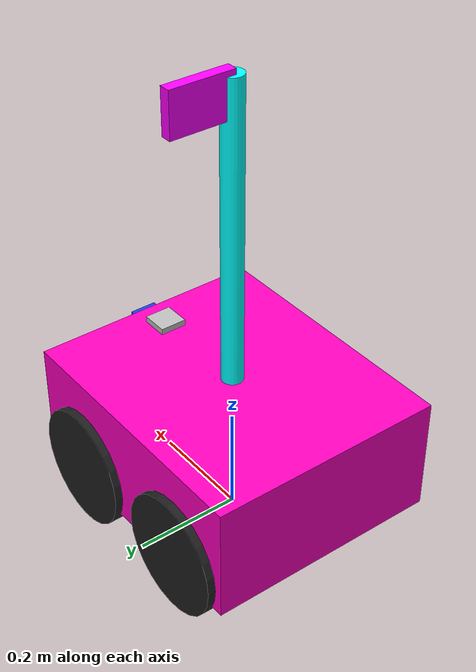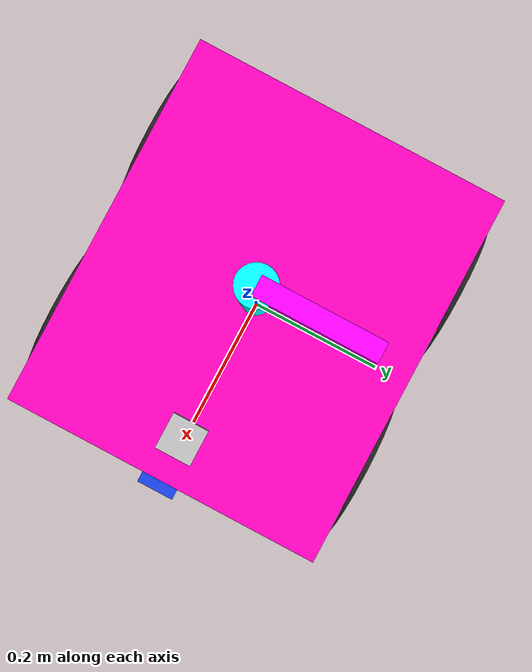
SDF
<?xml version="1.0" ?>
<sdf version="1.8">
  <model name="pioneer">
    <pose>0 0 0 0 0 0</pose>

    <link name="base_link">
      <pose>0 0 0 0 0 0</pose>
      <inertial>
        <pose>0 0 0.177 0 0 0</pose>
        <mass>20.0</mass>
        <inertia>
          <ixx>0.3338</ixx>
          <ixy>0.0</ixy>
          <ixz>0.0</ixz>
          <iyy>0.4783</iyy>
          <iyz>0.0</iyz>
          <izz>0.3338</izz>
        </inertia>
      </inertial>

      <collision name="chassis_collision">
        <pose>0 0 0.177 0 0 0</pose>
        <geometry>
          <box>
            <size>0.52 0.44 0.22</size>
          </box>
        </geometry>
      </collision>
      <visual name="chassis_visual">
        <pose>0 0 0.177 0 0 0</pose>
        <geometry>
          <box>
            <size>0.52 0.44 0.22</size>
          </box>
        </geometry>
        <material>
          <ambient>1 0 0.75 1</ambient>
          <diffuse>1 0 0.75 1</diffuse>
        </material>
      </visual>

      <collision name="top_plate_collision">
        <pose>0.043 0 0.254 0 0 0</pose>
        <geometry>
          <box>
            <size>0.20 0.20 0.05</size>
          </box>
        </geometry>
      </collision>
      <visual name="top_plate_visual">
        <pose>0.043 0 0.254 0 0 0</pose>
        <geometry>
          <box>
            <size>0.22 0.22 0.04</size>
          </box>
        </geometry>
        <material>
          <ambient>1 0.9 0.1 1</ambient>
          <diffuse>1 0.9 0.1 1</diffuse>
        </material>
      </visual>

      <visual name="mast_visual">
        <pose>0 0 0.55 0 0 0</pose>
        <geometry>
          <cylinder>
            <radius>0.02</radius>
            <length>0.6</length>
          </cylinder>
        </geometry>
        <material>
          <ambient>0 1 1 1</ambient>
          <diffuse>0 1 1 1</diffuse>
        </material>
      </visual>
      <visual name="flag_visual">
        <pose>0 0.06 0.82 0 0 0</pose>
        <geometry>
          <box>
            <size>0.02 0.12 0.08</size>
          </box>
        </geometry>
        <material>
          <ambient>1 0 1 1</ambient>
          <diffuse>1 0 1 1</diffuse>
        </material>
      </visual>

      <sensor name="imu_sensor" type="imu">
        <always_on>true</always_on>
        <update_rate>20</update_rate>
        <topic>imu</topic>
        <gz_frame_id>base_link</gz_frame_id>
        <imu>
          <angular_velocity>
            <x><noise type="gaussian"><mean>0</mean><stddev>0.001</stddev></noise></x>
            <y><noise type="gaussian"><mean>0</mean><stddev>0.001</stddev></noise></y>
            <z><noise type="gaussian"><mean>0</mean><stddev>0.001</stddev></noise></z>
          </angular_velocity>
          <linear_acceleration>
            <x><noise type="gaussian"><mean>0</mean><stddev>0.05</stddev></noise></x>
            <y><noise type="gaussian"><mean>0</mean><stddev>0.05</stddev></noise></y>
            <z><noise type="gaussian"><mean>0</mean><stddev>0.05</stddev></noise></z>
          </linear_acceleration>
        </imu>
      </sensor>
    </link>

    <link name="laser_frame">
      <pose>0.2 0 0.281 0 0 0</pose>
      <inertial>
        <mass>0.01</mass>
        <inertia>
          <ixx>1e-6</ixx>
          <ixy>0</ixy>
          <ixz>0</ixz>
          <iyy>1e-6</iyy>
          <iyz>0</iyz>
          <izz>1e-6</izz>
        </inertia>
      </inertial>
      <collision name="collision">
        <geometry>
          <box>
            <size>0.04 0.04 0.03</size>
          </box>
        </geometry>
      </collision>
      <visual name="visual">
        <geometry>
          <box>
            <size>0.05 0.05 0.035</size>
          </box>
        </geometry>
        <material>
          <ambient>0.75 0.75 0.75 1</ambient>
          <diffuse>0.75 0.75 0.75 1</diffuse>
        </material>
      </visual>
      <sensor name="front_lidar" type="gpu_lidar">
        <always_on>true</always_on>
        <update_rate>10</update_rate>
        <topic>scan</topic>
        <gz_frame_id>laser_frame</gz_frame_id>
        <lidar>
          <scan>
            <horizontal>
              <samples>810</samples>
              <resolution>1</resolution>
              <min_angle>-2.35619</min_angle>
              <max_angle>2.35619</max_angle>
            </horizontal>
          </scan>
          <range>
            <min>0.05</min>
            <max>20.0</max>
            <resolution>0.01</resolution>
          </range>
          <noise>
            <type>gaussian</type>
            <mean>0.0</mean>
            <stddev>0.02</stddev>
          </noise>
        </lidar>
      </sensor>
    </link>

    <joint name="laser_joint" type="fixed">
      <parent>base_link</parent>
      <child>laser_frame</child>
    </joint>

    <link name="cam_frame">
      <pose>0.24 0 0.261 0 0 0</pose>
      <inertial>
        <mass>0.05</mass>
        <inertia>
          <ixx>1e-4</ixx>
          <ixy>0</ixy>
          <ixz>0</ixz>
          <iyy>1e-4</iyy>
          <iyz>0</iyz>
          <izz>1e-4</izz>
        </inertia>
      </inertial>
      <collision name="collision">
        <geometry>
          <box>
            <size>0.06 0.05 0.04</size>
          </box>
        </geometry>
      </collision>
      <visual name="visual">
        <geometry>
          <box>
            <size>0.07 0.05 0.04</size>
          </box>
        </geometry>
        <material>
          <ambient>0.1 0.25 0.9 1</ambient>
          <diffuse>0.1 0.25 0.9 1</diffuse>
        </material>
      </visual>
    </link>

    <joint name="cam_joint" type="fixed">
      <parent>base_link</parent>
      <child>cam_frame</child>
    </joint>

    <link name="cam_optical_link">
      <pose>0.24 0 0.261 -1.5708 0 -1.5708</pose>
      <inertial>
        <mass>0.001</mass>
        <inertia>
          <ixx>1e-6</ixx>
          <ixy>0</ixy>
          <ixz>0</ixz>
          <iyy>1e-6</iyy>
          <iyz>0</iyz>
          <izz>1e-6</izz>
        </inertia>
      </inertial>
      <sensor name="front_camera" type="camera">
        <always_on>true</always_on>
        <update_rate>2</update_rate>
        <topic>camera/image</topic>
        <gz_frame_id>cam_optical_link</gz_frame_id>
        <camera>
          <camera_info_topic>camera/camera_info</camera_info_topic>
          <horizontal_fov>1.204277</horizontal_fov>
          <image>
            <width>160</width>
            <height>120</height>
            <format>R8G8B8</format>
          </image>
          <clip>
            <near>0.1</near>
            <far>12.0</far>
          </clip>
          <noise>
            <type>gaussian</type>
            <mean>0.0</mean>
            <stddev>0.0075</stddev>
          </noise>
        </camera>
      </sensor>
    </link>

    <joint name="cam_optical_joint" type="fixed">
      <parent>cam_frame</parent>
      <child>cam_optical_link</child>
    </joint>

    <link name="p3at_front_left_wheel">
      <pose>0.135 0.197 0.111 0 0 0</pose>
      <inertial>
        <mass>0.5</mass>
        <inertia>
          <ixx>0.012411765597</ixx>
          <ixy>0</ixy>
          <ixz>0</ixz>
          <iyy>0.015218160428</iyy>
          <iyz>0</iyz>
          <izz>0.011763977943</izz>
        </inertia>
      </inertial>
      <collision name="collision">
        <pose>0 0 0 -1.57079635 0 0</pose>
        <geometry>
          <cylinder>
            <radius>0.111</radius>
            <length>0.075</length>
          </cylinder>
        </geometry>
      </collision>
      <visual name="visual">
        <pose>0 0 0 -1.57079635 0 0</pose>
        <geometry>
          <cylinder>
            <radius>0.111</radius>
            <length>0.075</length>
          </cylinder>
        </geometry>
        <material>
          <ambient>0.117 0.117 0.117 1</ambient>
          <diffuse>0.117 0.117 0.117 1</diffuse>
        </material>
      </visual>
    </link>
    <joint name="p3at_front_left_wheel_joint" type="revolute">
      <parent>base_link</parent>
      <child>p3at_front_left_wheel</child>
      <axis>
        <xyz>0 1 0</xyz>
        <limit>
          <lower>-1e16</lower>
          <upper>1e16</upper>
          <effort>100</effort>
          <velocity>100</velocity>
        </limit>
        <dynamics>
          <damping>0.7</damping>
        </dynamics>
      </axis>
    </joint>

    <link name="p3at_front_right_wheel">
      <pose>0.135 -0.197 0.111 0 0 0</pose>
      <inertial>
        <mass>0.5</mass>
        <inertia>
          <ixx>0.012411765597</ixx>
          <ixy>0</ixy>
          <ixz>0</ixz>
          <iyy>0.015218160428</iyy>
          <iyz>0</iyz>
          <izz>0.011763977943</izz>
        </inertia>
      </inertial>
      <collision name="collision">
        <pose>0 0 0 -1.57079635 0 0</pose>
        <geometry>
          <cylinder>
            <radius>0.111</radius>
            <length>0.075</length>
          </cylinder>
        </geometry>
      </collision>
      <visual name="visual">
        <pose>0 0 0 -1.57079635 0 0</pose>
        <geometry>
          <cylinder>
            <radius>0.111</radius>
            <length>0.075</length>
          </cylinder>
        </geometry>
        <material>
          <ambient>0.117 0.117 0.117 1</ambient>
          <diffuse>0.117 0.117 0.117 1</diffuse>
        </material>
      </visual>
    </link>
    <joint name="p3at_front_right_wheel_joint" type="revolute">
      <parent>base_link</parent>
      <child>p3at_front_right_wheel</child>
      <axis>
        <xyz>0 1 0</xyz>
        <limit>
          <lower>-1e16</lower>
          <upper>1e16</upper>
          <effort>100</effort>
          <velocity>100</velocity>
        </limit>
        <dynamics>
          <damping>0.7</damping>
        </dynamics>
      </axis>
    </joint>

    <link name="p3at_back_left_wheel">
      <pose>-0.135 0.197 0.111 0 0 0</pose>
      <inertial>
        <mass>0.5</mass>
        <inertia>
          <ixx>0.012411765597</ixx>
          <ixy>0</ixy>
          <ixz>0</ixz>
          <iyy>0.015218160428</iyy>
          <iyz>0</iyz>
          <izz>0.011763977943</izz>
        </inertia>
      </inertial>
      <collision name="collision">
        <pose>0 0 0 -1.57079635 0 0</pose>
        <geometry>
          <cylinder>
            <radius>0.111</radius>
            <length>0.075</length>
          </cylinder>
        </geometry>
      </collision>
      <visual name="visual">
        <pose>0 0 0 -1.57079635 0 0</pose>
        <geometry>
          <cylinder>
            <radius>0.111</radius>
            <length>0.075</length>
          </cylinder>
        </geometry>
        <material>
          <ambient>0.117 0.117 0.117 1</ambient>
          <diffuse>0.117 0.117 0.117 1</diffuse>
        </material>
      </visual>
    </link>
    <joint name="p3at_back_left_wheel_joint" type="revolute">
      <parent>base_link</parent>
      <child>p3at_back_left_wheel</child>
      <axis>
        <xyz>0 1 0</xyz>
        <limit>
          <lower>-1e16</lower>
          <upper>1e16</upper>
          <effort>100</effort>
          <velocity>100</velocity>
        </limit>
        <dynamics>
          <damping>0.7</damping>
        </dynamics>
      </axis>
    </joint>

    <link name="p3at_back_right_wheel">
      <pose>-0.135 -0.197 0.111 0 0 0</pose>
      <inertial>
        <mass>0.5</mass>
        <inertia>
          <ixx>0.012411765597</ixx>
          <ixy>0</ixy>
          <ixz>0</ixz>
          <iyy>0.015218160428</iyy>
          <iyz>0</iyz>
          <izz>0.011763977943</izz>
        </inertia>
      </inertial>
      <collision name="collision">
        <pose>0 0 0 -1.57079635 0 0</pose>
        <geometry>
          <cylinder>
            <radius>0.111</radius>
            <length>0.075</length>
          </cylinder>
        </geometry>
      </collision>
      <visual name="visual">
        <pose>0 0 0 -1.57079635 0 0</pose>
        <geometry>
          <cylinder>
            <radius>0.111</radius>
            <length>0.075</length>
          </cylinder>
        </geometry>
        <material>
          <ambient>0.117 0.117 0.117 1</ambient>
          <diffuse>0.117 0.117 0.117 1</diffuse>
        </material>
      </visual>
    </link>
    <joint name="p3at_back_right_wheel_joint" type="revolute">
      <parent>base_link</parent>
      <child>p3at_back_right_wheel</child>
      <axis>
        <xyz>0 1 0</xyz>
        <limit>
          <lower>-1e16</lower>
          <upper>1e16</upper>
          <effort>100</effort>
          <velocity>100</velocity>
        </limit>
        <dynamics>
          <damping>0.7</damping>
        </dynamics>
      </axis>
    </joint>

    <plugin filename="gz-sim-joint-state-publisher-system" name="gz::sim::systems::JointStatePublisher">
      <topic>joint_states</topic>
    </plugin>
    <plugin filename="gz-sim-diff-drive-system" name="gz::sim::systems::DiffDrive">
      <left_joint>p3at_front_left_wheel_joint</left_joint>
      <left_joint>p3at_back_left_wheel_joint</left_joint>
      <right_joint>p3at_front_right_wheel_joint</right_joint>
      <right_joint>p3at_back_right_wheel_joint</right_joint>
      <wheel_separation>0.394</wheel_separation>
      <wheel_radius>0.111</wheel_radius>
      <odom_publish_frequency>20.0</odom_publish_frequency>
      <topic>cmd_vel</topic>
      <odom_topic>odom</odom_topic>
      <frame_id>odom</frame_id>
      <child_frame_id>base_link</child_frame_id>
      <publish_odom>true</publish_odom>
      <publish_odom_tf>false</publish_odom_tf>
    </plugin>
  </model>
</sdf>
